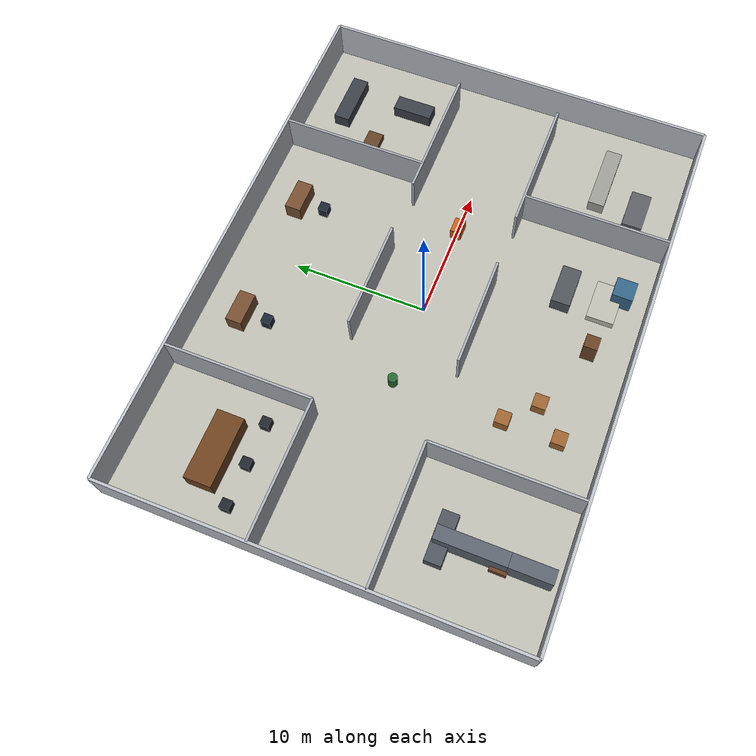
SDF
<?xml version="1.0"?>
<sdf version="1.6">
  <world name="vayron_indoor_test_facility">

    <!-- ENVIRONMENT AND PHYSICS                           -->

    <include>
      <uri>model://sun</uri>
    </include>

    <physics name="indoor_physics" type="ode">
      <max_step_size>0.001</max_step_size>
      <real_time_factor>1.0</real_time_factor>
      <real_time_update_rate>1000</real_time_update_rate>
    </physics>

    <scene>
      <ambient>0.75 0.75 0.75 1</ambient>
      <background>0.72 0.79 0.87 1</background>
      <shadows>true</shadows>
    </scene>

    <!-- SINGLE LEVEL FLOOR: 40m x 30m                     -->
    <!-- Floor top surface is z=0                          -->

    <model name="facility_floor">
      <static>true</static>
      <pose>0 0 -0.10 0 0 0</pose>
      <link name="floor">
        <collision name="collision">
          <geometry>
            <box><size>40 30 0.20</size></box>
          </geometry>
        </collision>
        <visual name="floor_visual">
          <geometry>
            <box><size>40 30 0.20</size></box>
          </geometry>
          <material>
            <ambient>0.72 0.72 0.68 1</ambient>
            <diffuse>0.72 0.72 0.68 1</diffuse>
          </material>
        </visual>
      </link>
    </model>

    <!-- OUTER WALLS: 3m HIGH                              -->
    <!-- All walls have their bottom at z=0                -->

    <model name="outer_wall_north">
      <static>true</static><pose>0 15 1.5 0 0 0</pose>
      <link name="wall">
        <collision name="c"><geometry><box><size>40 0.20 3</size></box></geometry></collision>
        <visual name="v"><geometry><box><size>40 0.20 3</size></box></geometry>
          <material><ambient>0.72 0.74 0.77 1</ambient></material></visual>
      </link>
    </model>

    <model name="outer_wall_south">
      <static>true</static><pose>0 -15 1.5 0 0 0</pose>
      <link name="wall">
        <collision name="c"><geometry><box><size>40 0.20 3</size></box></geometry></collision>
        <visual name="v"><geometry><box><size>40 0.20 3</size></box></geometry>
          <material><ambient>0.72 0.74 0.77 1</ambient></material></visual>
      </link>
    </model>

    <model name="outer_wall_west">
      <static>true</static><pose>-20 0 1.5 0 0 0</pose>
      <link name="wall">
        <collision name="c"><geometry><box><size>0.20 30 3</size></box></geometry></collision>
        <visual name="v"><geometry><box><size>0.20 30 3</size></box></geometry>
          <material><ambient>0.72 0.74 0.77 1</ambient></material></visual>
      </link>
    </model>

    <model name="outer_wall_east">
      <static>true</static><pose>20 0 1.5 0 0 0</pose>
      <link name="wall">
        <collision name="c"><geometry><box><size>0.20 30 3</size></box></geometry></collision>
        <visual name="v"><geometry><box><size>0.20 30 3</size></box></geometry>
          <material><ambient>0.72 0.74 0.77 1</ambient></material></visual>
      </link>
    </model>

    <!-- CENTRAL CORRIDOR: y=-2 to y=2                     -->
    <!-- Main room entrances leave 1.6m gaps               -->

    <!-- North partition, with door gaps -->
    <model name="north_wall_west">
      <static>true</static><pose>-15 4 1.5 0 0 0</pose>
      <link name="wall">
        <collision name="c"><geometry><box><size>10 0.18 3</size></box></geometry></collision>
        <visual name="v"><geometry><box><size>10 0.18 3</size></box></geometry>
          <material><ambient>0.65 0.67 0.70 1</ambient></material></visual>
      </link>
    </model>

    <model name="north_wall_middle">
      <static>true</static><pose>0 4 1.5 0 0 0</pose>
      <link name="wall">
        <collision name="c"><geometry><box><size>8 0.18 3</size></box></geometry></collision>
        <visual name="v"><geometry><box><size>8 0.18 3</size></box></geometry>
          <material><ambient>0.65 0.67 0.70 1</ambient></material></visual>
      </link>
    </model>

    <model name="north_wall_east">
      <static>true</static><pose>13 4 1.5 0 0 0</pose>
      <link name="wall">
        <collision name="c"><geometry><box><size>10 0.18 3</size></box></geometry></collision>
        <visual name="v"><geometry><box><size>10 0.18 3</size></box></geometry>
          <material><ambient>0.65 0.67 0.70 1</ambient></material></visual>
      </link>
    </model>

    <!-- South partition, with door gaps -->
    <model name="south_wall_west">
      <static>true</static><pose>-15 -4 1.5 0 0 0</pose>
      <link name="wall">
        <collision name="c"><geometry><box><size>10 0.18 3</size></box></geometry></collision>
        <visual name="v"><geometry><box><size>10 0.18 3</size></box></geometry>
          <material><ambient>0.65 0.67 0.70 1</ambient></material></visual>
      </link>
    </model>

    <model name="south_wall_middle">
      <static>true</static><pose>0 -4 1.5 0 0 0</pose>
      <link name="wall">
        <collision name="c"><geometry><box><size>8 0.18 3</size></box></geometry></collision>
        <visual name="v"><geometry><box><size>8 0.18 3</size></box></geometry>
          <material><ambient>0.65 0.67 0.70 1</ambient></material></visual>
      </link>
    </model>

    <model name="south_wall_east">
      <static>true</static><pose>13 -4 1.5 0 0 0</pose>
      <link name="wall">
        <collision name="c"><geometry><box><size>10 0.18 3</size></box></geometry></collision>
        <visual name="v"><geometry><box><size>10 0.18 3</size></box></geometry>
          <material><ambient>0.65 0.67 0.70 1</ambient></material></visual>
      </link>
    </model>

    <!-- ROOM DIVIDERS: EACH ROOM HAS DOORWAY GAPS         -->

    <!-- North rooms: x=-10, 0, 10 boundaries -->
    <model name="north_divider_west">
      <static>true</static><pose>-10 9.5 1.5 0 0 0</pose>
      <link name="wall">
        <collision name="c"><geometry><box><size>0.18 11 3</size></box></geometry></collision>
        <visual name="v"><geometry><box><size>0.18 11 3</size></box></geometry>
          <material><ambient>0.65 0.67 0.70 1</ambient></material></visual>
      </link>
    </model>

    <model name="north_divider_east">
      <static>true</static><pose>10 9.5 1.5 0 0 0</pose>
      <link name="wall">
        <collision name="c"><geometry><box><size>0.18 11 3</size></box></geometry></collision>
        <visual name="v"><geometry><box><size>0.18 11 3</size></box></geometry>
          <material><ambient>0.65 0.67 0.70 1</ambient></material></visual>
      </link>
    </model>

    <!-- South rooms -->
    <model name="south_divider_west">
      <static>true</static><pose>-10 -9.5 1.5 0 0 0</pose>
      <link name="wall">
        <collision name="c"><geometry><box><size>0.18 11 3</size></box></geometry></collision>
        <visual name="v"><geometry><box><size>0.18 11 3</size></box></geometry>
          <material><ambient>0.65 0.67 0.70 1</ambient></material></visual>
      </link>
    </model>

    <model name="south_divider_east">
      <static>true</static><pose>10 -9.5 1.5 0 0 0</pose>
      <link name="wall">
        <collision name="c"><geometry><box><size>0.18 11 3</size></box></geometry></collision>
        <visual name="v"><geometry><box><size>0.18 11 3</size></box></geometry>
          <material><ambient>0.65 0.67 0.70 1</ambient></material></visual>
      </link>
    </model>

    <!-- ROOM 1: CONFERENCE / TABLES                       -->

    <model name="conference_table">
      <static>true</static><pose>-15 9 0.75 0 0 0</pose>
      <link name="table">
        <collision name="c"><geometry><box><size>5 2 1.5</size></box></geometry></collision>
        <visual name="v"><geometry><box><size>5 2 1.5</size></box></geometry>
          <material><ambient>0.42 0.25 0.12 1</ambient></material></visual>
      </link>
    </model>

    <model name="conference_chair_1">
      <static>true</static><pose>-18 6.8 0.45 0 0 0</pose>
      <link name="chair">
        <collision name="c"><geometry><box><size>0.7 0.7 0.9</size></box></geometry></collision>
        <visual name="v"><geometry><box><size>0.7 0.7 0.9</size></box></geometry>
          <material><ambient>0.12 0.14 0.17 1</ambient></material></visual>
      </link>
    </model>

    <model name="conference_chair_2">
      <static>true</static><pose>-15 6.8 0.45 0 0 0</pose>
      <link name="chair">
        <collision name="c"><geometry><box><size>0.7 0.7 0.9</size></box></geometry></collision>
        <visual name="v"><geometry><box><size>0.7 0.7 0.9</size></box></geometry>
          <material><ambient>0.12 0.14 0.17 1</ambient></material></visual>
      </link>
    </model>

    <model name="conference_chair_3">
      <static>true</static><pose>-12 6.8 0.45 0 0 0</pose>
      <link name="chair">
        <collision name="c"><geometry><box><size>0.7 0.7 0.9</size></box></geometry></collision>
        <visual name="v"><geometry><box><size>0.7 0.7 0.9</size></box></geometry>
          <material><ambient>0.12 0.14 0.17 1</ambient></material></visual>
      </link>
    </model>

    <!-- ROOM 2: OFFICE DESKS AND CHAIRS                   -->

    <model name="office_desk_1">
      <static>true</static><pose>-5 12 0.65 0 0 0</pose>
      <link name="desk">
        <collision name="c"><geometry><box><size>2.4 1.2 1.3</size></box></geometry></collision>
        <visual name="v"><geometry><box><size>2.4 1.2 1.3</size></box></geometry>
          <material><ambient>0.45 0.30 0.18 1</ambient></material></visual>
      </link>
    </model>

    <model name="office_desk_2">
      <static>true</static><pose>5 12 0.65 0 0 0</pose>
      <link name="desk">
        <collision name="c"><geometry><box><size>2.4 1.2 1.3</size></box></geometry></collision>
        <visual name="v"><geometry><box><size>2.4 1.2 1.3</size></box></geometry>
          <material><ambient>0.45 0.30 0.18 1</ambient></material></visual>
      </link>
    </model>

    <model name="office_chair_1">
      <static>true</static><pose>-5 10 0.45 0 0 0</pose>
      <link name="chair">
        <collision name="c"><geometry><box><size>0.7 0.7 0.9</size></box></geometry></collision>
        <visual name="v"><geometry><box><size>0.7 0.7 0.9</size></box></geometry>
          <material><ambient>0.10 0.14 0.20 1</ambient></material></visual>
      </link>
    </model>

    <model name="office_chair_2">
      <static>true</static><pose>5 10 0.45 0 0 0</pose>
      <link name="chair">
        <collision name="c"><geometry><box><size>0.7 0.7 0.9</size></box></geometry></collision>
        <visual name="v"><geometry><box><size>0.7 0.7 0.9</size></box></geometry>
          <material><ambient>0.10 0.14 0.20 1</ambient></material></visual>
      </link>
    </model>

    <!-- ROOM 3: LOUNGE / SOFAS / COFFEE TABLE             -->

    <model name="lounge_sofa">
      <static>true</static><pose>15 12 0.5 0 0 0</pose>
      <link name="sofa">
        <collision name="c"><geometry><box><size>4 1.2 1</size></box></geometry></collision>
        <visual name="v"><geometry><box><size>4 1.2 1</size></box></geometry>
          <material><ambient>0.22 0.24 0.27 1</ambient></material></visual>
      </link>
    </model>

    <model name="lounge_sofa_2">
      <static>true</static><pose>16 7 0.5 0 0 1.5708</pose>
      <link name="sofa">
        <collision name="c"><geometry><box><size>3 1.2 1</size></box></geometry></collision>
        <visual name="v"><geometry><box><size>3 1.2 1</size></box></geometry>
          <material><ambient>0.22 0.24 0.27 1</ambient></material></visual>
      </link>
    </model>

    <model name="lounge_coffee_table">
      <static>true</static><pose>12 9 0.3 0 0 0</pose>
      <link name="table">
        <collision name="c"><geometry><box><size>1.8 1.2 0.6</size></box></geometry></collision>
        <visual name="v"><geometry><box><size>1.8 1.2 0.6</size></box></geometry>
          <material><ambient>0.38 0.25 0.15 1</ambient></material></visual>
      </link>
    </model>

    <!-- ROOM 4: KITCHEN / CABINETS                        -->

    <model name="kitchen_counter">
      <static>true</static><pose>15 -9 0.5 0 0 0</pose>
      <link name="counter">
        <collision name="c"><geometry><box><size>5 1.2 1</size></box></geometry></collision>
        <visual name="v"><geometry><box><size>5 1.2 1</size></box></geometry>
          <material><ambient>0.60 0.60 0.58 1</ambient></material></visual>
      </link>
    </model>

    <model name="kitchen_island">
      <static>true</static><pose>13 -12 0.55 0 0 0</pose>
      <link name="island">
        <collision name="c"><geometry><box><size>3 1.5 1.1</size></box></geometry></collision>
        <visual name="v"><geometry><box><size>3 1.5 1.1</size></box></geometry>
          <material><ambient>0.35 0.36 0.38 1</ambient></material></visual>
      </link>
    </model>

    <!-- ROOM 5: WAREHOUSE / BOXES / SHELVES               -->

    <model name="warehouse_shelf_1">
      <static>true</static><pose>-15 -9 1 0 0 0</pose>
      <link name="shelf">
        <collision name="c"><geometry><box><size>1 5 2</size></box></geometry></collision>
        <visual name="v"><geometry><box><size>1 5 2</size></box></geometry>
          <material><ambient>0.35 0.38 0.42 1</ambient></material></visual>
      </link>
    </model>

    <model name="warehouse_shelf_2">
      <static>true</static><pose>-15 -13 1 0 0 0</pose>
      <link name="shelf">
        <collision name="c"><geometry><box><size>1 3 2</size></box></geometry></collision>
        <visual name="v"><geometry><box><size>1 3 2</size></box></geometry>
          <material><ambient>0.35 0.38 0.42 1</ambient></material></visual>
      </link>
    </model>

    <model name="warehouse_box_1">
      <static>true</static><pose>-6 -8 0.5 0 0 0</pose>
      <link name="box">
        <collision name="c"><geometry><box><size>1 1 1</size></box></geometry></collision>
        <visual name="v"><geometry><box><size>1 1 1</size></box></geometry>
          <material><ambient>0.60 0.38 0.18 1</ambient></material></visual>
      </link>
    </model>

    <model name="warehouse_box_2">
      <static>true</static><pose>-4 -10 0.5 0 0 0</pose>
      <link name="box">
        <collision name="c"><geometry><box><size>1 1 1</size></box></geometry></collision>
        <visual name="v"><geometry><box><size>1 1 1</size></box></geometry>
          <material><ambient>0.60 0.38 0.18 1</ambient></material></visual>
      </link>
    </model>

    <model name="warehouse_box_3">
      <static>true</static><pose>-6 -12 0.5 0 0 0</pose>
      <link name="box">
        <collision name="c"><geometry><box><size>1 1 1</size></box></geometry></collision>
        <visual name="v"><geometry><box><size>1 1 1</size></box></geometry>
          <material><ambient>0.60 0.38 0.18 1</ambient></material></visual>
      </link>
    </model>

    <!-- ROOM 6: WORKSHOP / MACHINES                       -->

    <model name="workbench_1">
      <static>true</static><pose>5 -9 0.6 0 0 0</pose>
      <link name="bench">
        <collision name="c"><geometry><box><size>3 1.4 1.2</size></box></geometry></collision>
        <visual name="v"><geometry><box><size>3 1.4 1.2</size></box></geometry>
          <material><ambient>0.30 0.32 0.34 1</ambient></material></visual>
      </link>
    </model>

    <model name="workshop_machine_1">
      <static>true</static><pose>6 -13 0.8 0 0 0</pose>
      <link name="machine">
        <collision name="c"><geometry><box><size>1.5 1.5 1.6</size></box></geometry></collision>
        <visual name="v"><geometry><box><size>1.5 1.5 1.6</size></box></geometry>
          <material><ambient>0.20 0.38 0.52 1</ambient></material></visual>
      </link>
    </model>

    <!-- ROOM 7: LIVING ROOM                               -->

    <model name="living_sofa_1">
      <static>true</static><pose>-15 -7 0.5 0 0 0</pose>
      <link name="sofa">
        <collision name="c"><geometry><box><size>3.5 1.2 1</size></box></geometry></collision>
        <visual name="v"><geometry><box><size>3.5 1.2 1</size></box></geometry>
          <material><ambient>0.30 0.32 0.36 1</ambient></material></visual>
      </link>
    </model>

    <model name="living_table">
      <static>true</static><pose>-15 -11 0.3 0 0 0</pose>
      <link name="table">
        <collision name="c"><geometry><box><size>1.5 1.2 0.6</size></box></geometry></collision>
        <visual name="v"><geometry><box><size>1.5 1.2 0.6</size></box></geometry>
          <material><ambient>0.40 0.25 0.14 1</ambient></material></visual>
      </link>
    </model>

    <!-- ROOM 8: BEDROOM / BED / CABINET                   -->

    <model name="bed">
      <static>true</static><pose>5 -12 0.3 0 0 0</pose>
      <link name="bed">
        <collision name="c"><geometry><box><size>3 2 0.6</size></box></geometry></collision>
        <visual name="v"><geometry><box><size>3 2 0.6</size></box></geometry>
          <material><ambient>0.72 0.72 0.68 1</ambient></material></visual>
      </link>
    </model>

    <model name="bedroom_cabinet">
      <static>true</static><pose>1 -12 1 0 0 0</pose>
      <link name="cabinet">
        <collision name="c"><geometry><box><size>1 1 2</size></box></geometry></collision>
        <visual name="v"><geometry><box><size>1 1 2</size></box></geometry>
          <material><ambient>0.40 0.25 0.14 1</ambient></material></visual>
      </link>
    </model>

    <!-- ADDITIONAL CORRIDOR OBSTACLES                     -->

    <model name="corridor_plant_1">
      <static>true</static><pose>-6 0 0.5 0 0 0</pose>
      <link name="pot">
        <collision name="c"><geometry><cylinder><radius>0.35</radius><length>1</length></cylinder></geometry></collision>
        <visual name="v"><geometry><cylinder><radius>0.35</radius><length>1</length></cylinder></geometry>
          <material><ambient>0.15 0.40 0.18 1</ambient></material></visual>
      </link>
    </model>

    <model name="corridor_cart">
      <static>true</static><pose>7 0 0.5 0 0 0</pose>
      <link name="cart">
        <collision name="c"><geometry><box><size>1.2 0.8 1</size></box></geometry></collision>
        <visual name="v"><geometry><box><size>1.2 0.8 1</size></box></geometry>
          <material><ambient>0.80 0.35 0.08 1</ambient></material></visual>
      </link>
    </model>

    <!-- END OF FACILITY                                   -->

  </world>
</sdf>
